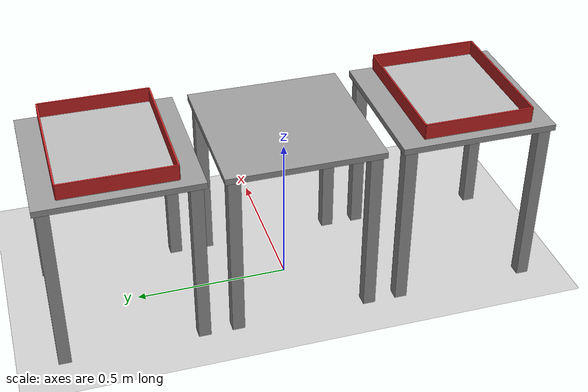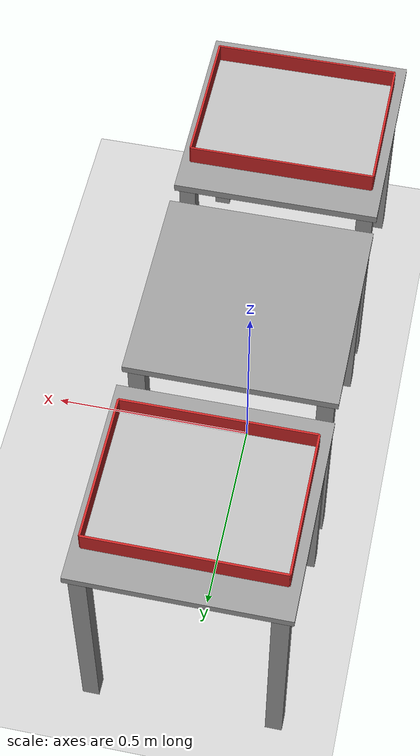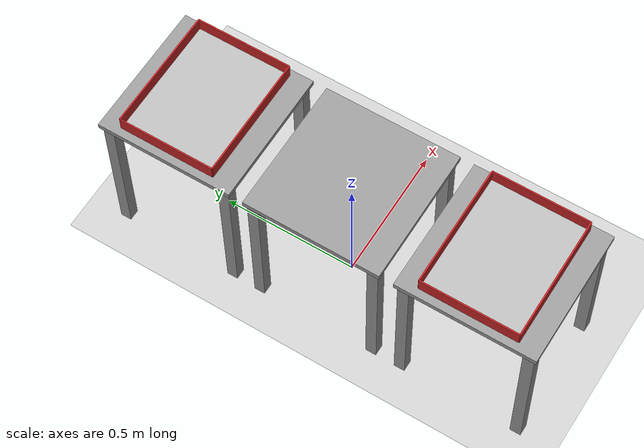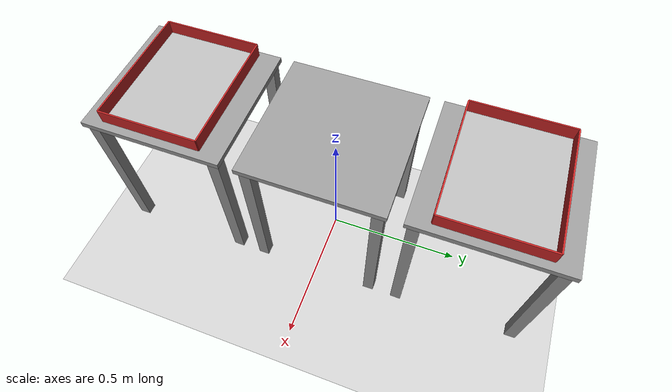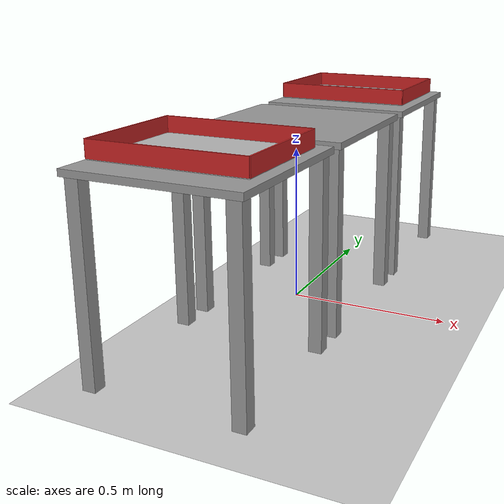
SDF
<sdf version="1.6">
 <world name="ur5_robot_base">
  <gravity>0 0 -9.81</gravity>
  <physics name="default_physics" default="0" type="ode">
   <max_step_size>0.001</max_step_size>
   <real_time_factor>1</real_time_factor>
   <real_time_update_rate>1000</real_time_update_rate>
   <ode>
    <solver><type>quick</type><iters>100</iters><precon_iters>0</precon_iters><sor>1.000000</sor></solver>
    <constraints>
     <cfm>0.000000</cfm>
     <erp>0.500000</erp>
     <contact_max_correcting_vel>1000.000000</contact_max_correcting_vel>
     <contact_surface_layer>0.00000</contact_surface_layer>
    </constraints>
   </ode>
  </physics>
  <scene><ambient>0.4 0.4 0.4 1</ambient><background>0.7 0.7 0.7 1</background><shadows>1</shadows></scene>
  <include><uri>model://sun</uri></include>
  <include><uri>model://ground_plane</uri></include>
  <model name="ur5_base"><include><uri>model://ur5_base</uri></include></model>
  <model name="cafe_table_left">
   <include><uri>model://ur5_base</uri></include>
   <pose>0 0.55 0 0 0 0</pose>
  </model>
  <model name="cafe_table_right">
   <include><uri>model://ur5_base</uri></include>
   <pose>0 -0.55 0 0 0 0</pose>
  </model>
  <model name="storage_left">
   <static>true</static>
   <include><uri>model://storage</uri></include>
   <pose>0 0.55 0.6 0 0 0</pose>
  </model>
  <model name="storage_right">
   <static>true</static>
   <include><uri>model://storage</uri></include>
   <pose>0 -0.55 0.6 0 0 0</pose>
  </model>
 </world>
</sdf>

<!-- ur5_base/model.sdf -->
<sdf version="1.6">
  <model name="ur5_base">
    <static>true</static>

    <link name="top_plate">
      <pose>0 0 0.58 0 0 0</pose>
      <collision name="top_plate_collision">
        <geometry>
          <box>
            <size>0.5 0.5 0.02</size>
          </box>
        </geometry>
        <surface>
          <contact>
            <collide_bitmask>0x01</collide_bitmask>
          </contact>
        </surface>
      </collision>
      <visual name="top_plate_visual">
        <geometry>
          <box>
            <size>0.5 0.5 0.02</size>
          </box>
        </geometry>
        <material>
          <script>
            <uri>file://media/materials/scripts/gazebo.material</uri>
            <name>Gazebo/Grey</name>
          </script>
        </material>
      </visual>
    </link>
    <link name="leg1">
      <pose>0.22 0.22 0.285 0 0 0</pose>
      <collision name="leg1_collision">
        <geometry>
          <box>
            <size>0.04 0.04 0.57</size>
          </box>
        </geometry>
      </collision>
      <visual name="leg1_visual">
        <geometry>
          <box>
            <size>0.04 0.04 0.57</size>
          </box>
        </geometry>
        <material>
          <script>
            <uri>file://media/materials/scripts/gazebo.material</uri>
            <name>Gazebo/Grey</name>
          </script>
        </material>
      </visual>
    </link>
    <link name="leg2">
      <pose>-0.22 0.22 0.285 0 0 0</pose>
      <collision name="leg2_collision">
        <geometry>
          <box>
            <size>0.04 0.04 0.57</size>
          </box>
        </geometry>
      </collision>
      <visual name="leg2_visual">
        <geometry>
          <box>
            <size>0.04 0.04 0.57</size>
          </box>
        </geometry>
        <material>
          <script>
            <uri>file://media/materials/scripts/gazebo.material</uri>
            <name>Gazebo/Grey</name>
          </script>
        </material>
      </visual>
    </link>
    <link name="leg3">
      <pose>0.22 -0.22 0.285 0 0 0</pose>
      <collision name="leg3_collision">
        <geometry>
          <box>
            <size>0.04 0.04 0.57</size>
          </box>
        </geometry>
      </collision>
      <visual name="leg3_visual">
        <geometry>
          <box>
            <size>0.04 0.04 0.57</size>
          </box>
        </geometry>
        <material>
          <script>
            <uri>file://media/materials/scripts/gazebo.material</uri>
            <name>Gazebo/Grey</name>
          </script>
        </material>
      </visual>
    </link>
    <link name="leg4">
      <pose>-0.22 -0.22 0.285 0 0 0</pose>
      <collision name="leg4_collision">
        <geometry>
          <box>
            <size>0.04 0.04 0.57</size>
          </box>
        </geometry>
      </collision>
      <visual name="leg4_visual">
        <geometry>
          <box>
            <size>0.04 0.04 0.57</size>
          </box>
        </geometry>
        <material>
          <script>
            <uri>file://media/materials/scripts/gazebo.material</uri>
            <name>Gazebo/Grey</name>
          </script>
        </material>
      </visual>
    </link>
  </model>
</sdf>

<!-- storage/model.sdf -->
<sdf version='1.6'>
  <model name='storage'>
    <link name='storage-base'>
      <pose frame=''>0 0 0 0 -0 0</pose>
      <inertial>
        <pose frame=''>0 0 0 0 -0 0</pose>
        <mass>1</mass>
        <inertia>
          <ixx>1</ixx>
          <ixy>0.01</ixy>
          <ixz>0.01</ixz>
          <iyy>1</iyy>
          <iyz>0.01</iyz>
          <izz>1</izz>
        </inertia>
      </inertial>
      <collision name='storage-base_collision'>
        <pose frame=''>0 0 0 0 -0 0</pose>
        <geometry>
          <box>
            <size>0.45 0.35 0.005</size>
          </box>
        </geometry>
        <surface>
          <contact>
            <ode>
              <kp>1e+06</kp>
              <kd>1</kd>
              <min_depth>0.001</min_depth>
            </ode>
          </contact>
          <friction>
            <ode>
              <mu>1</mu>
              <mu2>1</mu2>
            </ode>
          </friction>
        </surface>
      </collision>
      <collision name='storage-base_collision_1'>
        <pose frame=''>0 -0.175 0.025 1.57 -0 0</pose>
        <geometry>
          <box>
            <size>0.45 0.05 0.005</size>
          </box>
        </geometry>
        <surface>
          <contact>
            <ode>
              <kp>1e+06</kp>
              <kd>1</kd>
              <min_depth>0.001</min_depth>
            </ode>
          </contact>
          <friction>
            <ode>
              <mu>1</mu>
              <mu2>1</mu2>
            </ode>
          </friction>
        </surface>
      </collision>
      <collision name='storage-base_collision_2'>
        <pose frame=''>0 0.175 0.025 1.57 -0 0</pose>
        <geometry>
          <box>
            <size>0.45 0.05 0.005</size>
          </box>
        </geometry>
        <surface>
          <contact>
            <ode>
              <kp>1e+06</kp>
              <kd>1</kd>
              <min_depth>0.001</min_depth>
            </ode>
          </contact>
          <friction>
            <ode>
              <mu>1</mu>
              <mu2>1</mu2>
            </ode>
          </friction>
        </surface>
      </collision>
      <collision name='storage-base_collision_3'>
        <pose frame=''>0.225 0 0.025 3.14159 1.57079 3.14159</pose>
        <geometry>
          <box>
            <size>0.05 0.35 0.005</size>
          </box>
        </geometry>
        <surface>
          <contact>
            <ode>
              <kp>1e+06</kp>
              <kd>1</kd>
              <min_depth>0.001</min_depth>
            </ode>
          </contact>
          <friction>
            <ode>
              <mu>1</mu>
              <mu2>1</mu2>
            </ode>
          </friction>
        </surface>
      </collision>
      <collision name='storage-base_collision_4'>
        <pose frame=''>-0.225 0 0.025 3.14159 1.57079 3.14159</pose>
        <geometry>
          <box>
            <size>0.05 0.35 0.005</size>
          </box>
        </geometry>
        <surface>
          <contact>
            <ode>
              <kp>1e+06</kp>
              <kd>1</kd>
              <min_depth>0.001</min_depth>
            </ode>
          </contact>
          <friction>
            <ode>
              <mu>1</mu>
              <mu2>1</mu2>
            </ode>
          </friction>
        </surface>
      </collision>
      <visual name='storage-base_visual'>
        <pose frame=''>0 0 0 0 -0 0</pose>
        <geometry>
          <box>
            <size>0.45 0.35 0.005</size>
          </box>
        </geometry>
        <material>
          <script>
            <uri>model://book/materials/scripts</uri>
            <uri>model://book/materials/textures</uri>
          </script>
        </material>
      </visual>
      <visual name='storage-base_visual_1'>
        <pose frame=''>0 -0.175 0.025 1.57 -0 0</pose>
        <geometry>
          <box>
            <size>0.45 0.05 0.005</size>
          </box>
        </geometry>
        <material>
          <script>
            <name>Gazebo/Red</name>
            <uri>file://media/materials/scripts/gazebo.material</uri>
          </script>
        </material>
      </visual>
      <visual name='storage-base_visual_2'>
        <pose frame=''>0 0.175 0.025 1.57 -0 0</pose>
        <geometry>
          <box>
            <size>0.45 0.05 0.005</size>
          </box>
        </geometry>
        <material>
          <script>
            <name>Gazebo/Red</name>
            <uri>file://media/materials/scripts/gazebo.material</uri>
          </script>
        </material>
      </visual>
      <visual name='storage-base_visual_3'>
        <pose frame=''>0.225 0 0.025 3.14159 1.57079 3.14159</pose>
        <geometry>
          <box>
            <size>0.05 0.35 0.005</size>
          </box>
        </geometry>
        <material>
          <script>
            <name>Gazebo/Red</name>
            <uri>file://media/materials/scripts/gazebo.material</uri>
          </script>
        </material>
      </visual>
      <visual name='storage-base_visual_4'>
        <pose frame=''>-0.225 0 0.025 3.14159 1.57079 3.14159</pose>
        <geometry>
          <box>
            <size>0.05 0.35 0.005</size>
          </box>
        </geometry>
        <material>
          <script>
            <name>Gazebo/Red</name>
            <uri>file://media/materials/scripts/gazebo.material</uri>
          </script>
        </material>
      </visual>
      <gravity>1</gravity>
      <velocity_decay/>
    </link>
  </model>
</sdf>
